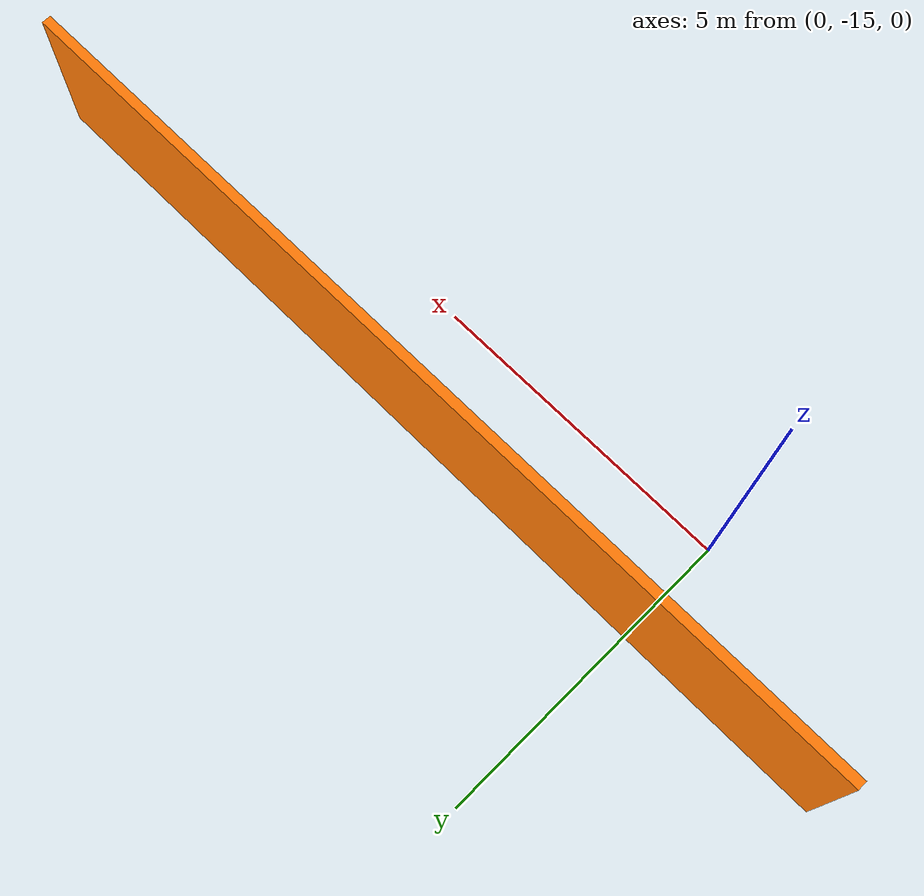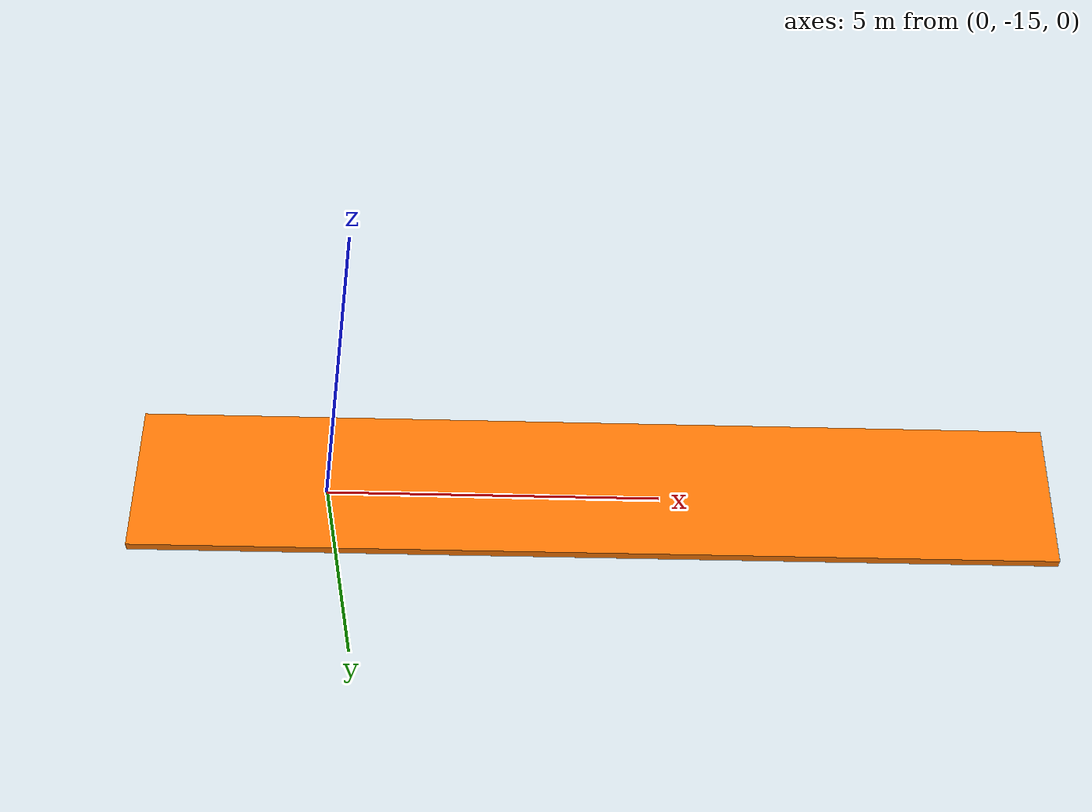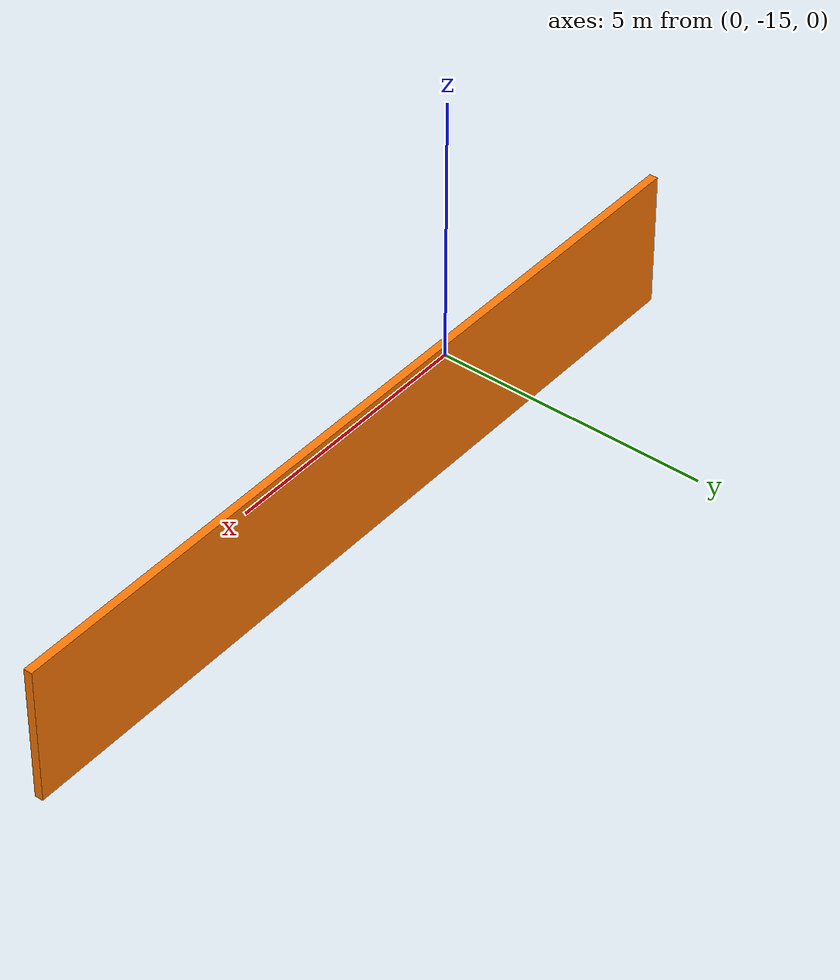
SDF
<?xml version='1.0'?>
<sdf version='1.6'>
  <model name='wall'>
    <pose frame=''>4.10576 -13.3256 0 0 -0 0</pose>
    <link name='Wall_29'>
      <collision name='Wall_29_Collision'>
        <geometry>
          <box>
            <size>14.75 0.15 2.5</size>
          </box>
        </geometry>
        <pose frame=''>0 0 1.25 0 -0 0</pose>
      </collision>
      <visual name='Wall_29_Visual'>
        <pose frame=''>0 0 1.25 0 -0 0</pose>
        <geometry>
          <box>
            <size>14.75 0.15 2.5</size>
          </box>
        </geometry>
        <material>
          <script>
            <uri>file://media/materials/scripts/gazebo.material</uri>
            <name>Gazebo/Grey</name>
          </script>
          <ambient>0.996078 0.47451 0.0196078 1</ambient>
        </material>
        <meta>
          <layer>0</layer>
        </meta>
      </visual>
      <pose frame=''>0 0 0 0 -0 0</pose>
    </link>
    <static>1</static>
  </model>
</sdf>
